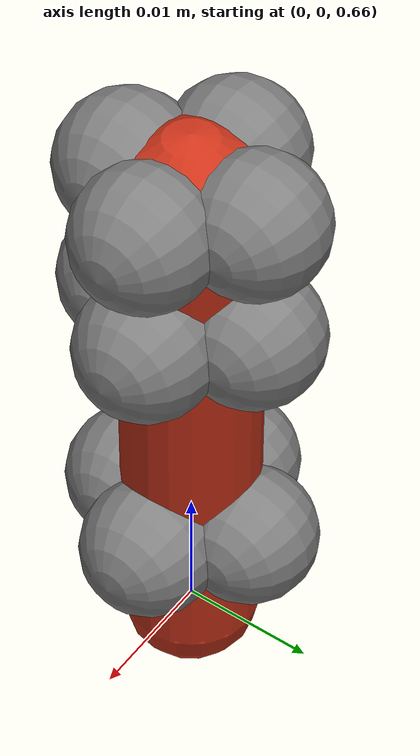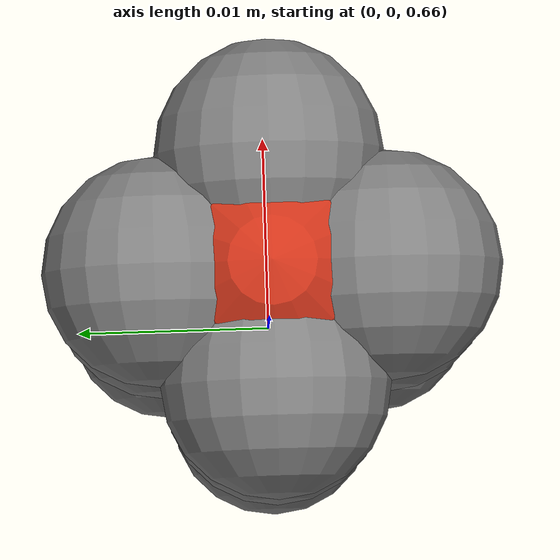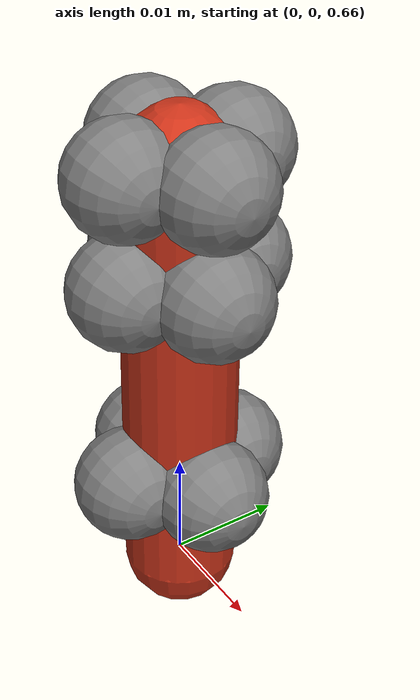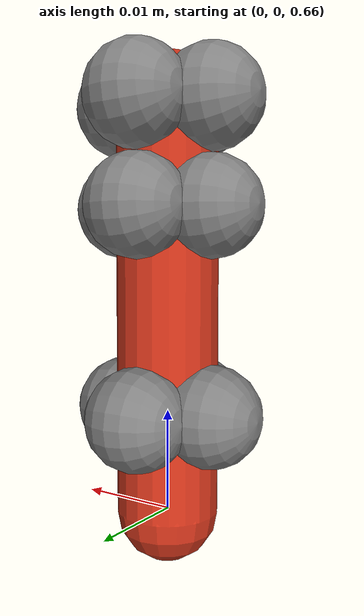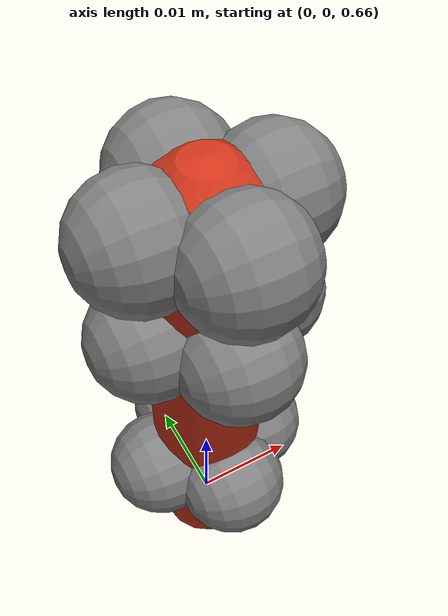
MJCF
<mujoco model="cable_trunk_model_example">
<option gravity="0 0 0"/>
  <compiler angle="radian"/>
  <extension>
    <plugin plugin="mujoco.elasticity.cable">
      <instance name="compositeactuated">
        <config key="twist" value="1e8"/>
        <config key="bend" value="1e8"/>
        <config key="vmax" value="0"/>
      </instance>
    </plugin>
  </extension>
  <custom>
    <text name="composite_actuated" data="rope_actuated"/>
  </custom>
  <asset>
    <texture type="2d" name="grid" builtin="checker" rgb1="0.1 0.2 0.3" rgb2="0.2 0.3 0.4" width="300" height="300"/>
    <material name="grid" texture="grid" texrepeat="8 8" reflectance="0.2"/>
  </asset>
  <worldbody>
    <geom size="10 10 0.01" type="plane" material="grid"/>
    <light pos="0 0 2" dir="0 0 -1"/>
    <body name="actuatedB_first" pos="0 0 0.7" quat="0 -0.707107 0 0.707107">
      <!-- Add slider joint with stiffness and damping to simulate elongation of material-->
      <joint name="slider_cable_world" pos="0 0 0" type="slide" axis="1 0 0" group="3" stiffness="1e2" damping="0.8"/>
      <geom name="actuatedG0" size="0.005 0.005" pos="0.005 0 0" quat="0.707107 0 -0.707107 0" type="capsule" rgba="0.8 0.2 0.1 1"/>
      <site name="actuatedS_first" pos="0 0 0" group="3"/>
      <!-- Add sides for tendon to pass through-->
      <site name="cable_0_y_front" pos="0 0.005 0"/>
      <site name="cable_0_y_back" pos="0 -0.005 0"/>
      <site name="cable_0_z_front" pos="0 0 0.005"/>
      <site name="cable_0_z_back" pos="0 0 -0.005"/>
      <plugin instance="compositeactuated"/>
      <body name="actuatedB_1" pos="0.00999999 0 0">
        <joint name="actuatedJ_1" pos="0 0 0" type="ball" group="3" actuatorfrclimited="false" armature="0.01" damping="0.25"/>
        <geom name="actuatedG1" size="0.005 0.00999999" pos="0.00999999 0 0" quat="0.707107 0 -0.707107 0" type="capsule" rgba="0.8 0.2 0.1 1"/>
        <!-- Add sides for tendon to pass through-->
        <site name="cable_1_y_front" pos="0 0.005 0"/>
        <site name="cable_1_y_back" pos="0 -0.005 0"/>
        <site name="cable_1_z_front" pos="0 0 0.005"/>
        <site name="cable_1_z_back" pos="0 0 -0.005"/>
        <plugin instance="compositeactuated"/>
        <body name="actuatedB_2" pos="0.02 0 0">
          <joint name="actuatedJ_2" pos="0 0 0" type="ball" group="3" actuatorfrclimited="false" armature="0.01" damping="0.25"/>
          <geom name="actuatedG2" size="0.005 0.005" pos="0.005 0 0" quat="0.707107 0 -0.707107 0" type="capsule" rgba="0.8 0.2 0.1 1"/>
          <!-- Add sides for tendon to pass through-->
          <site name="cable_2_y_front" pos="0 0.005 0"/>
          <site name="cable_2_y_back" pos="0 -0.005 0"/>
          <site name="cable_2_z_front" pos="0 0 0.005"/>
          <site name="cable_2_z_back" pos="0 0 -0.005"/>
          <plugin instance="compositeactuated"/>
        </body>
      </body>
    </body>
  </worldbody>
  <!-- add tendons attached to trunk-->
  <contact>
    <exclude body1="actuatedB_first" body2="actuatedB_1"/>
    <exclude body1="actuatedB_1" body2="actuatedB_2"/>
  </contact>
</mujoco>
